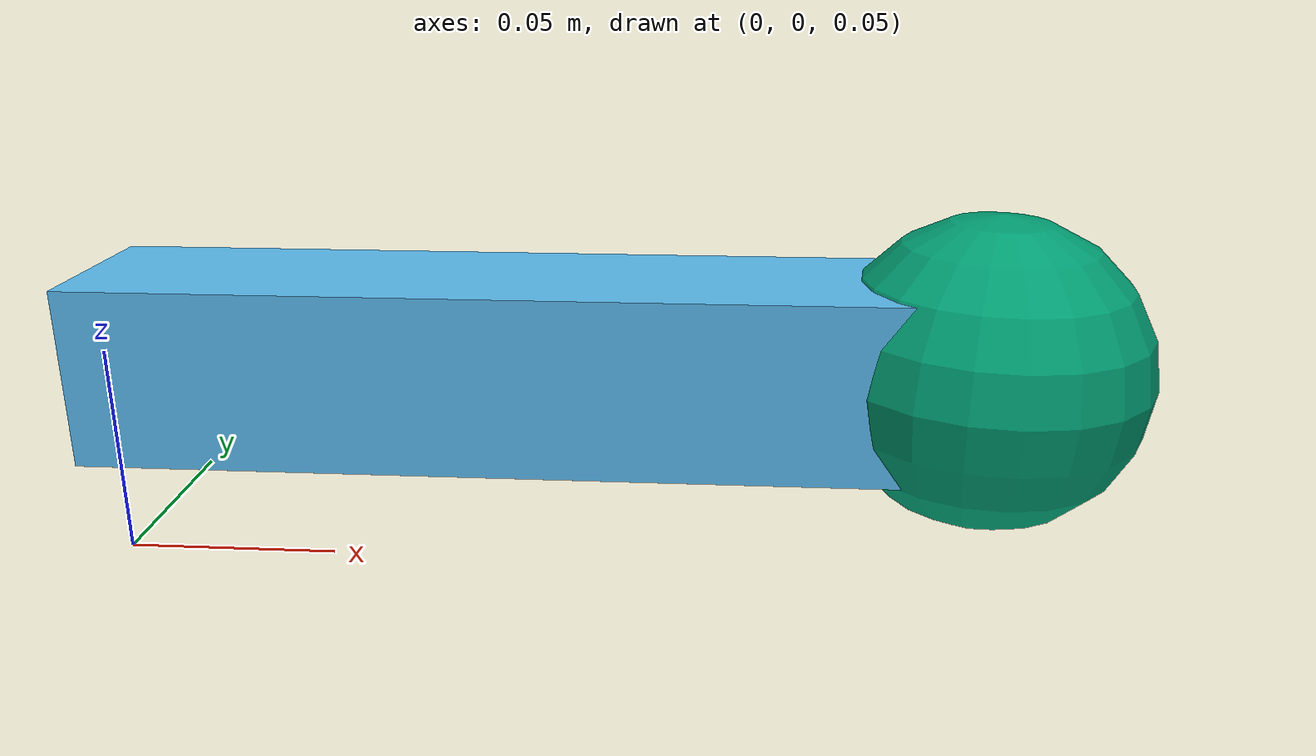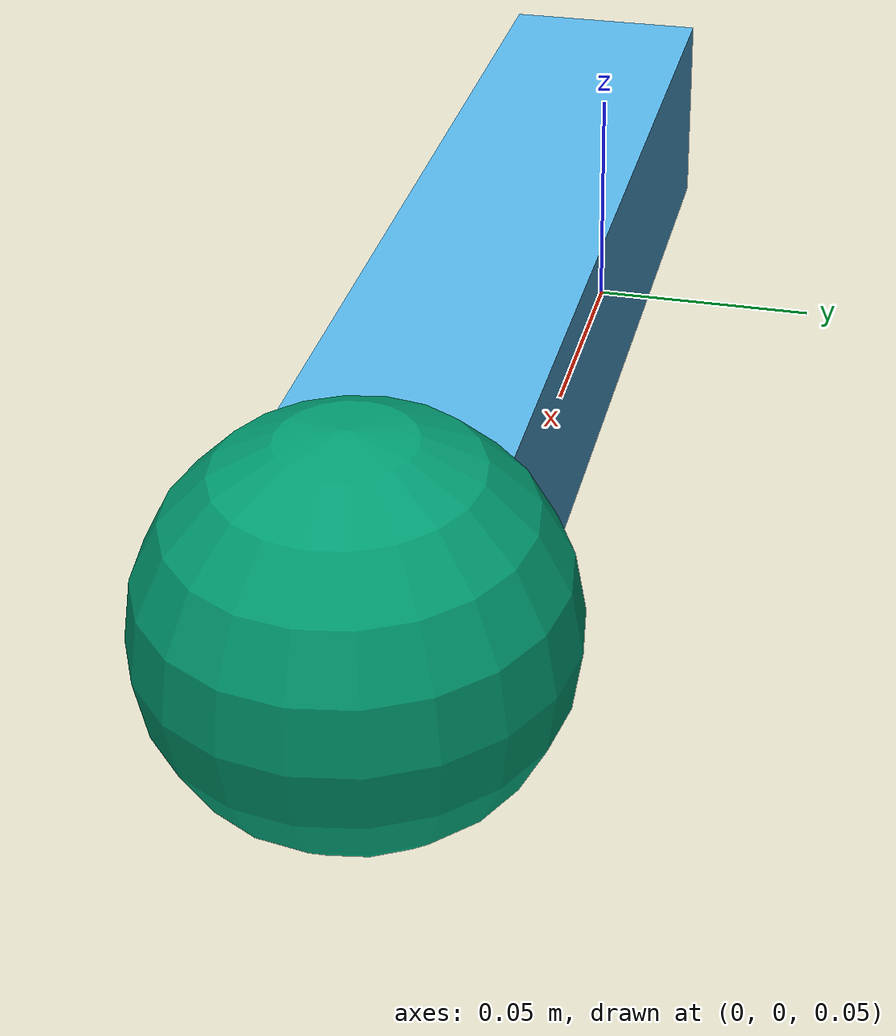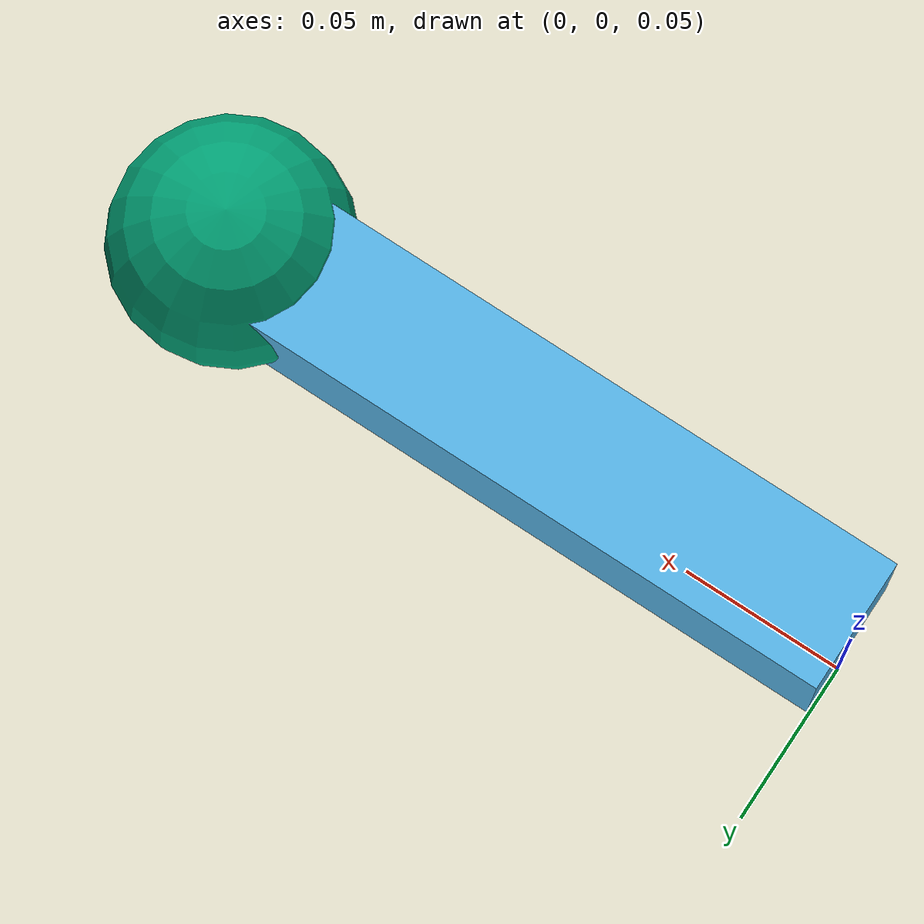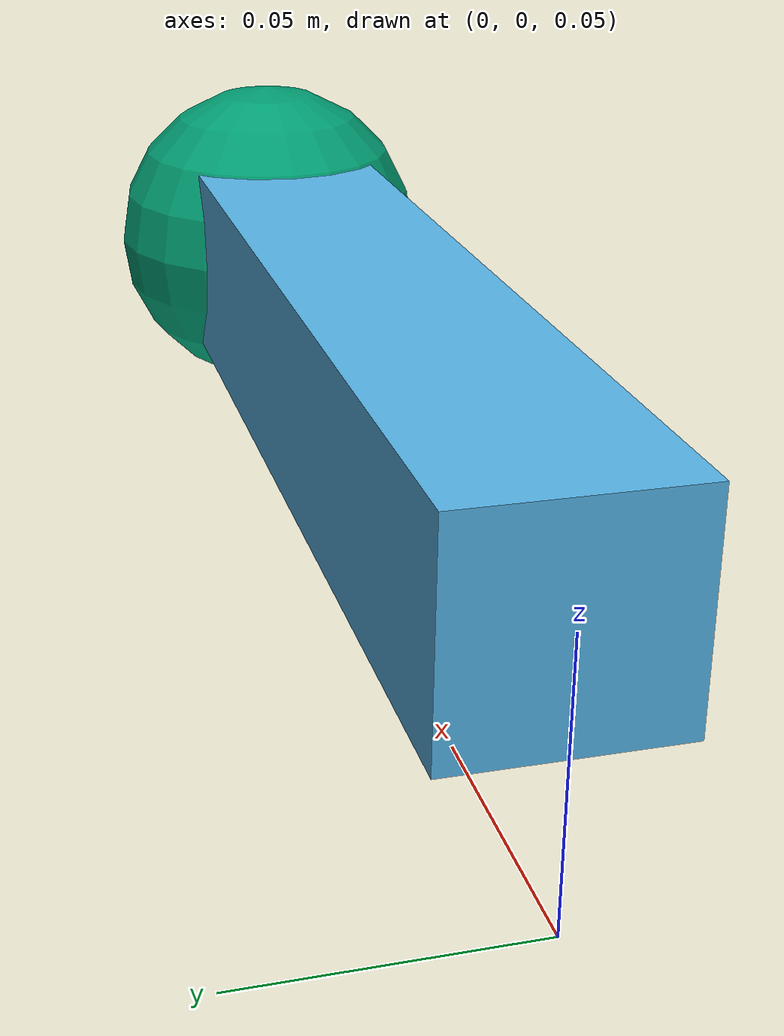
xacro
<?xml version="1.0"?>
<robot xmlns:xacro="http://www.ros.org/wiki/xacro" name="two_link">
  <xacro:property name="link_len" value="0.2"/>
  <link name="base_link"/>
  <link name="link1">
    <visual>
      <origin xyz="0.1 0 0" rpy="0 0 0"/>
      <geometry><box size="0.2 0.04 0.04"/></geometry>
    </visual>
  </link>
  <link name="tip_link">
    <visual>
      <geometry><sphere radius="0.035"/></geometry>
    </visual>
  </link>
  <xacro:include filename="two_link_joints.xacro"/>
</robot>

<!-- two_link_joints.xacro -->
<robot xmlns:xacro="http://www.ros.org/wiki/xacro">
  <joint name="joint1" type="revolute">
    <parent link="base_link"/>
    <child link="link1"/>
    <origin xyz="0 0 0.1" rpy="0 0 0"/>
    <axis xyz="0 0 1"/>
    <limit lower="-3.14159" upper="3.14159" velocity="1"/>
  </joint>
  <joint name="joint2" type="revolute">
    <parent link="link1"/>
    <child link="tip_link"/>
    <origin xyz="${link_len} 0 0" rpy="0 0 0"/>
    <axis xyz="0 0 1"/>
    <limit lower="-3.14159" upper="3.14159" velocity="1"/>
  </joint>
</robot>
